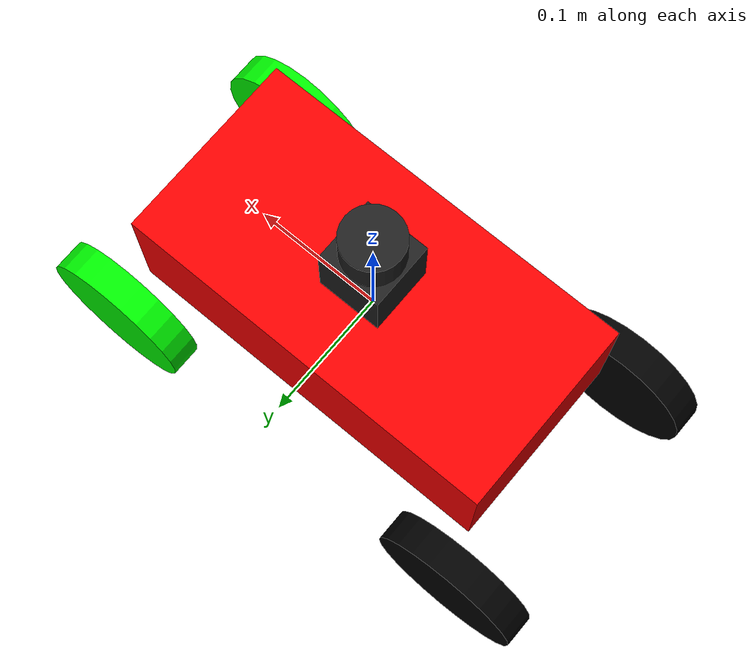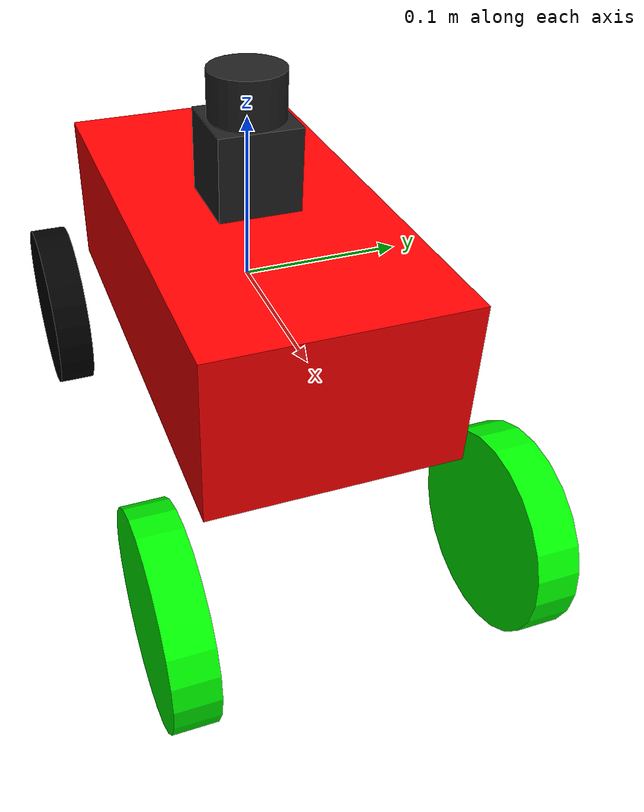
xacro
<?xml version="1.0"?>
<robot
    xmlns:gazebo="http://playerstage.sourceforge.net/gazebo/xmlschema/#gz"
    xmlns:model="http://playerstage.sourceforge.net/gazebo/xmlschema/#model"
    xmlns:sensor="http://playerstage.sourceforge.net/gazebo/xmlschema/#sensor"
    xmlns:body="http://playerstage.sourceforge.net/gazebo/xmlschema/#body"
    xmlns:geom="http://playerstage.sourceforge.net/gazebo/xmlschema/#geom"
    xmlns:joint="http://playerstage.sourceforge.net/gazebo/xmlschema/#joint"
    xmlns:controller="http://playerstage.sourceforge.net/gazebo/xmlschema/#controller"
    xmlns:interface="http://playerstage.sourceforge.net/gazebo/xmlschema/#interface"
    xmlns:rendering="http://playerstage.sourceforge.net/gazebo/xmlschema/#rendering"
    xmlns:physics="http://playerstage.sourceforge.net/gazebo/xmlschema/#physics"
    xmlns:xacro="http://www.ros.org/wiki/xacro"
    name="car">

    <xacro:include filename="$(find car)/urdf/car.gazebo" />

    <xacro:property name="M_PI" value="3.1415926535897931" />
    <xacro:property name="carLength" value="0.3" />
    <xacro:property name="carWidth" value="0.15" />
    <xacro:property name="carHeight" value="0.1" />
    <xacro:property name="wheelRadius" value="0.06" />
    <xacro:property name="wheelWidth" value="0.025" />

    <!-- Main body -->
    <link name="base_link">
        <inertial>
            <mass value="0.2" />
            <origin xyz="0 0 0" />
            <inertia  ixx="0.2" ixy="0.0"  ixz="0.0"  iyy="0.2"  iyz="0.0"  izz="0.2" />
        </inertial>
        <visual>
            <origin xyz="0 0 0" rpy="0 0 0" />
            <geometry>
                <box size="${carLength} ${carWidth} ${carHeight}" />
            </geometry>
            <material name="Red"/>
        </visual>
        <collision>
            <origin xyz="0 0 0" rpy="0 0 0" />
            <geometry>
                <box size="${carLength} ${carWidth} ${carHeight}" />
            </geometry>
        </collision>
    </link>

	<!-- the front left wheel -->
    <joint name="front_left_wheel_joint" type="revolute" >
        <axis xyz="0 0 1" />
        <parent link="base_link" />
        <child link="front_left_wheel_link" />
        <origin xyz="0.16 0.1 -0.1" rpy="0 0 0" />
        <limit effort="1000.0" lower="-0.5" upper="0.5" velocity="0.5"/>
    </joint>
    <link name="front_left_wheel_link">
        <inertial>
            <mass value="0.01" />
            <origin xyz="0 0 0" />
            <inertia  ixx="0.01" ixy="0.0"  ixz="0.0"  iyy="0.01"  iyz="0.0"  izz="0.01" />
        </inertial>
        <visual>
            <origin xyz="0 0 0" rpy="${M_PI/2} 0 0" />
            <geometry>
                <cylinder radius="${wheelRadius}" length="${wheelWidth}" />
            </geometry>
            <material name="Green"/>
        </visual>
        <collision>
            <origin xyz="0 0 0" rpy="${M_PI/2} 0 0" />
            <geometry>
                <cylinder radius="${wheelRadius}" length="${wheelWidth}" />
            </geometry>
        </collision>
    </link>
    <transmission name="trnasm_front_left_wheel_joint">
      <type>transmission_interface/SimpleTransmission</type>
      <actuator name="act_front_left_wheel_joint">
        <mechanicalReduction>1</mechanicalReduction>
        <hardwareInterface>hardware_interface/EffortJointInterface</hardwareInterface>
      </actuator>
      <joint name="front_left_wheel_joint">
        <hardwareInterface>hardware_interface/EffortJointInterface</hardwareInterface>
      </joint>
    </transmission>

	<!-- the front right wheel -->
    <joint name="front_right_wheel_joint" type="revolute" >
        <axis xyz="0 0 1" />
        <parent link="base_link" />
        <child link="front_right_wheel_link" />
        <origin xyz="0.16 -0.1 -0.1" rpy="0 0 0" />
        <limit effort="1000.0" lower="-0.5" upper="0.5" velocity="0.5"/>
    </joint>
    <link name="front_right_wheel_link">
        <inertial>
            <mass value="0.01" />
            <origin xyz="0 0 0" />
            <inertia  ixx="0.01" ixy="0.0"  ixz="0.0"  iyy="0.01"  iyz="0.0"  izz="0.01" />
        </inertial>
        <visual>
            <origin xyz="0 0 0" rpy="${M_PI/2} 0 0" />
            <geometry>
                <cylinder radius="${wheelRadius}" length="${wheelWidth}" />
            </geometry>
            <material name="Green"/>
        </visual>
        <collision>
            <origin xyz="0 0 0" rpy="${M_PI/2} 0 0" />
            <geometry>
                <cylinder radius="${wheelRadius}" length="${wheelWidth}" />
            </geometry>
        </collision>
    </link>

    <transmission name="trnasm_front_right_wheel">
      <type>transmission_interface/SimpleTransmission</type>
      <actuator name="act_front_right_wheel">
        <mechanicalReduction>1</mechanicalReduction>
        <hardwareInterface>hardware_interface/EffortJointInterface</hardwareInterface>
      </actuator>
      <joint name="front_right_wheel_joint">
        <hardwareInterface>hardware_interface/EffortJointInterface</hardwareInterface>
      </joint>
    </transmission>

	<!-- the back left wheel -->
    <joint name="back_left_wheel_joint" type="continuous" >
        <axis xyz="0 1 0" />
        <parent link="base_link" />
        <child link="back_left_wheel_link" />
        <origin xyz="-0.16 0.1 -0.1" rpy="0 0 0" />
    </joint>
    <link name="back_left_wheel_link">
        <inertial>
            <mass value="0.01" />
            <origin xyz="0 0 0" />
            <inertia  ixx="0.01" ixy="0.0"  ixz="0.0"  iyy="0.01"  iyz="0.0"  izz="0.01" />
        </inertial>
        <visual>
            <origin xyz="0 0 0" rpy="${M_PI/2} 0 0" />
            <geometry>
                <cylinder radius="${wheelRadius}" length="${wheelWidth}" />
            </geometry>
            <material name="Black"/>
        </visual>
        <collision>
            <origin xyz="0 0 0" rpy="${M_PI/2} 0 0" />
            <geometry>
                <cylinder radius="${wheelRadius}" length="${wheelWidth}" />
            </geometry>
        </collision>
    </link>

    <transmission name="trnasm_back_left_wheel">
      <type>transmission_interface/SimpleTransmission</type>
      <actuator name="act_back_left_wheel">
        <mechanicalReduction>1</mechanicalReduction>
        <hardwareInterface>hardware_interface/EffortJointInterface</hardwareInterface>
      </actuator>
      <joint name="back_left_wheel_joint">
        <hardwareInterface>hardware_interface/EffortJointInterface</hardwareInterface>
      </joint>
    </transmission>

	<!-- the back right wheel -->
    <joint name="back_right_wheel_joint" type="continuous" >
        <axis xyz="0 1 0" />
        <parent link="base_link" />
        <child link="back_right_wheel_link" />
        <origin xyz="-0.16 -0.1 -0.1" rpy="0 0 0" />
    </joint>
    <link name="back_right_wheel_link">
        <inertial>
            <mass value="0.01" />
            <origin xyz="0 0 0" />
            <inertia  ixx="0.01" ixy="0.0"  ixz="0.0"  iyy="0.01"  iyz="0.0"  izz="0.01" />
        </inertial>
        <visual>
            <origin xyz="0 0 0" rpy="${M_PI/2} 0 0" />
            <geometry>
                <cylinder radius="${wheelRadius}" length="${wheelWidth}" />
            </geometry>
            <material name="Black"/>
        </visual>
        <collision>
            <origin xyz="0 0 0" rpy="${M_PI/2} 0 0" />
            <geometry>
                <cylinder radius="${wheelRadius}" length="${wheelWidth}" />
            </geometry>
        </collision>
    </link>

    <transmission name="trnasm_back_right_wheel">
      <type>transmission_interface/SimpleTransmission</type>
      <actuator name="act_back_right_wheel">
        <mechanicalReduction>1</mechanicalReduction>
        <hardwareInterface>hardware_interface/EffortJointInterface</hardwareInterface>
      </actuator>
      <joint name="back_right_wheel_joint">
        <hardwareInterface>hardware_interface/EffortJointInterface</hardwareInterface>
      </joint>
    </transmission>

    <joint name="laser_base_mount_joint" type="fixed">
        <origin xyz="0 0 0.05" rpy="0 0 0" />
        <parent link="base_link"/>
        <child link="laser_base_link"/>
    </joint>

    <link name="laser_base_link" type="fixed">
        <inertial>
            <mass value="0.1"/>
            <origin xyz="0 0 0.0"/>
            <inertia ixx="0.1" ixy="0" ixz="0" iyy="0.1" iyz="0" izz="0.1"/>
        </inertial>

        <visual>
            <origin rpy="0 0 0" xyz="0 0 0.025"/>
            <geometry>
                <box size="0.05 0.05 0.05"/>
            </geometry>
        </visual>

        <collision>
            <origin rpy="0 0 0" xyz="0 0 0.025"/>
            <geometry>
                <box size="0.05 0.05 0.05"/>
            </geometry>
        </collision>
    </link>

    <joint name="base_scan_joint" type="fixed" >
        <origin xyz="0 0 0.05" rpy="0 0 0" />
        <parent link="laser_base_link" />
        <child link="base_scan_link"/>
    </joint>

    <link name="base_scan_link" type="laser">
        <inertial>
            <mass value="0.1"/>
            <origin xyz="0 0 0.0"/>
            <inertia ixx="0.1" ixy="0" ixz="0" iyy="0.1" iyz="0" izz="0.1"/>
        </inertial>

        <visual>
            <origin rpy="0 0 0" xyz="0 0 0.014"/>
            <geometry>
                <cylinder radius="0.0229" length="0.028"/>
            </geometry>
        </visual>

        <collision>
            <origin rpy="0 0 0" xyz="0 0 0.014"/>
            <geometry>
                <cylinder radius="0.0229" length="0.028"/>
            </geometry>
        </collision>
    </link>

</robot>

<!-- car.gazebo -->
<robot
    xmlns:gazebo="http://playerstage.sourceforge.net/gazebo/xmlschema/#gz"
    xmlns:model="http://playerstage.sourceforge.net/gazebo/xmlschema/#model"
    xmlns:sensor="http://playerstage.sourceforge.net/gazebo/xmlschema/#sensor"
    xmlns:body="http://playerstage.sourceforge.net/gazebo/xmlschema/#body"
    xmlns:geom="http://playerstage.sourceforge.net/gazebo/xmlschema/#geom"
    xmlns:joint="http://playerstage.sourceforge.net/gazebo/xmlschema/#joint"
    xmlns:controller="http://playerstage.sourceforge.net/gazebo/xmlschema/#controller"
    xmlns:interface="http://playerstage.sourceforge.net/gazebo/xmlschema/#interface"
    xmlns:rendering="http://playerstage.sourceforge.net/gazebo/xmlschema/#rendering"
    xmlns:physics="http://playerstage.sourceforge.net/gazebo/xmlschema/#physics"
    xmlns:xacro="http://www.ros.org/wiki/xacro">

    <gazebo>
        <plugin name="gazebo_ros_control" filename="libgazebo_ros_control.so">
            <robotSimType>gazebo_ros_control/DefaultRobotHWSim</robotSimType>
            <legacyModeNS>true</legacyModeNS>
        </plugin>
    </gazebo>

    <gazebo reference="base_link">
        <material>Gazebo/Red</material>
    </gazebo>

    <gazebo reference="front_left_wheel_link">
        <material>Gazebo/Green</material>
    </gazebo>
    <gazebo reference="front_right_wheel_link">
        <material>Gazebo/Green</material>
        <turnGravityOff>false</turnGravityOff>
    </gazebo>
    <gazebo reference="back_left_wheel_link">
        <material>Gazebo/Black</material>
    </gazebo>

    <gazebo reference="back_right_wheel_link">
        <material>Gazebo/Black</material>
    </gazebo>

    <gazebo reference="base_scan_link">
        <sensor:ray name="laser">
            <rayCount>683</rayCount>
            <rangeCount>683</rangeCount>
            <laserCount>1</laserCount>

            <origin>0.0 0.0 0.0</origin>
            <displayRays>false</displayRays>

            <minAngle>-135</minAngle>
            <maxAngle> 135</maxAngle>

            <minRange>0.06</minRange>
            <maxRange>4.0</maxRange>
            <resRange>0.001</resRange>
            <updateRate>10.0</updateRate>

            <controller:gazebo_ros_laser name="gazebo_ros_base_scan_link_controller" plugin="libgazebo_ros_laser.so">
                <gaussianNoise>0.005</gaussianNoise>
                <alwaysOn>true</alwaysOn>
                <updateRate>10.0</updateRate>
                <topicName>base_scan/scan</topicName>
                <frameName>base_scan_link</frameName>
                <interface:laser name="gazebo_ros_base_scan_link_iface"/>
            </controller:gazebo_ros_laser>
        </sensor:ray>
    </gazebo>

    <gazebo reference="laser_base_link">
        <material>Gazebo/Black</material>
    </gazebo>

    <gazebo reference="base_scan_link">
        <material>Gazebo/Black</material>
    </gazebo>
    <!-- Physical Material Macros -->
    <material name="Red">
    	<color rgba="1.0 0 0 1.0"/>
    </material>
    <material name="Green">
    	<color rgba="0 1.0 0 1.0"/>
    </material>
    <material name="Blue">
    	<color rgba="0 0 1.0 0.5"/>
    </material>
    <material name="Black">
    	<color rgba="0 0 0 1.0"/>
    </material>
    <material name="Aqua">
    	<color rgba="0 255 255 1.0"/>
    </material>

</robot>
